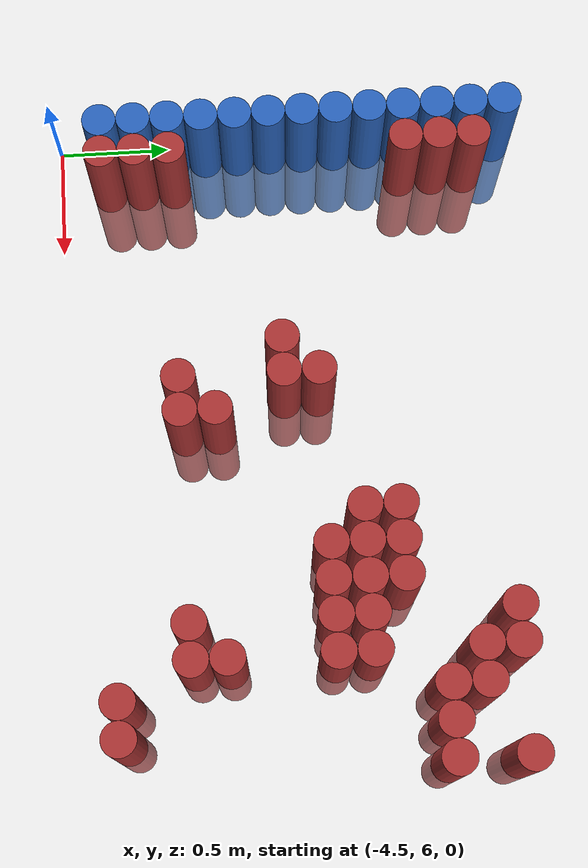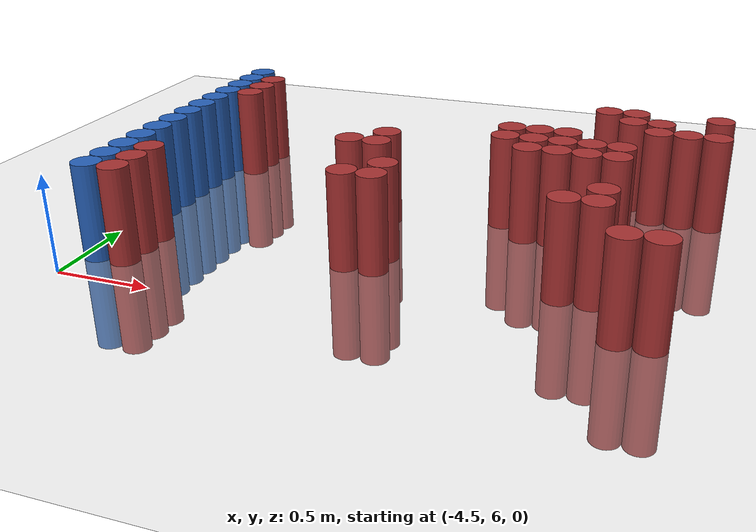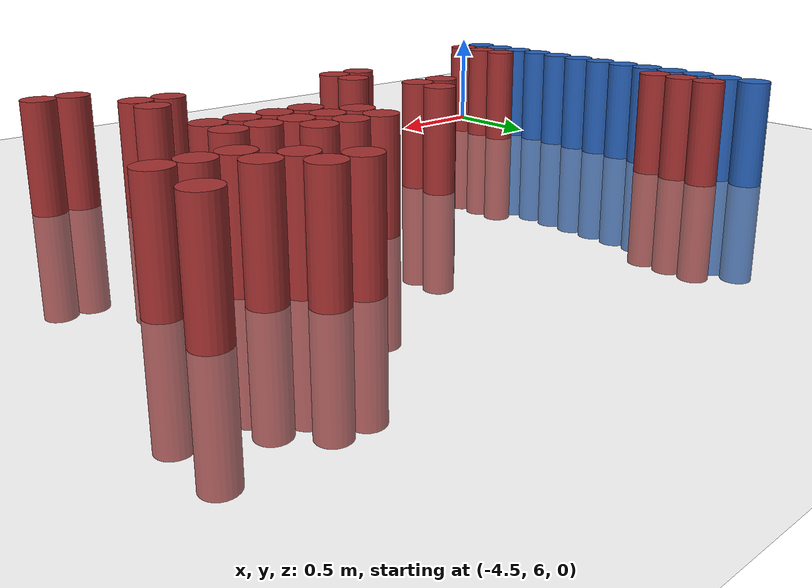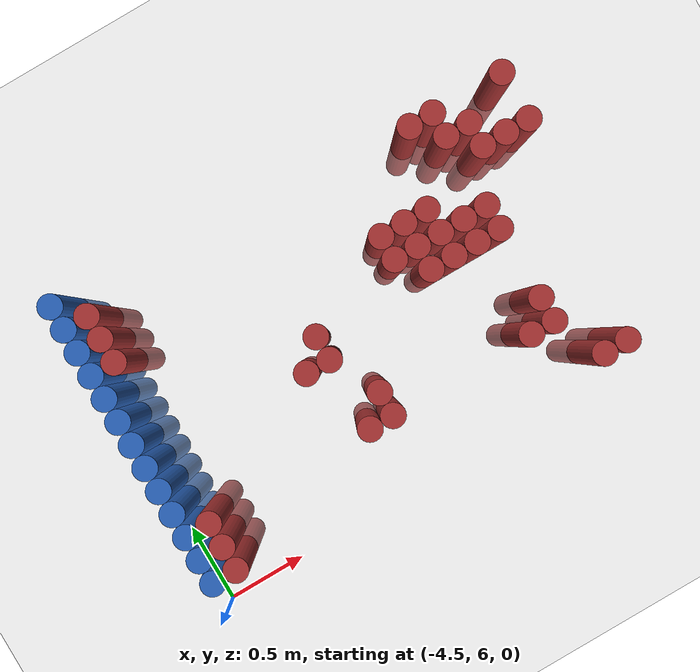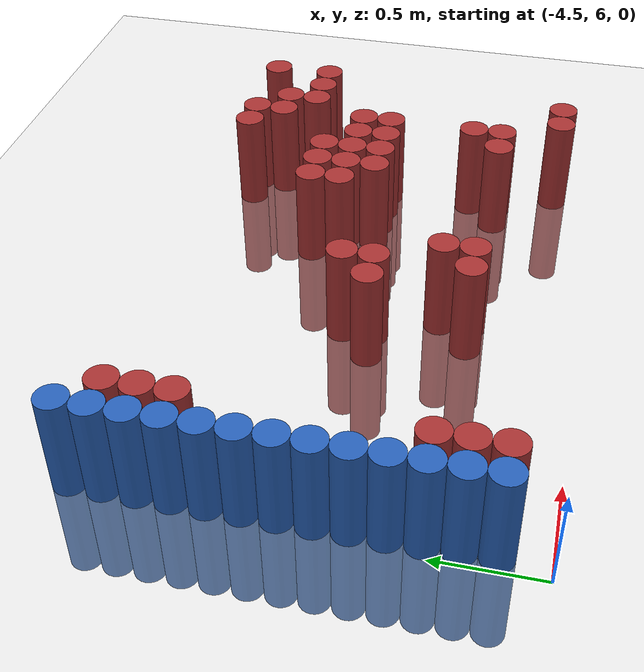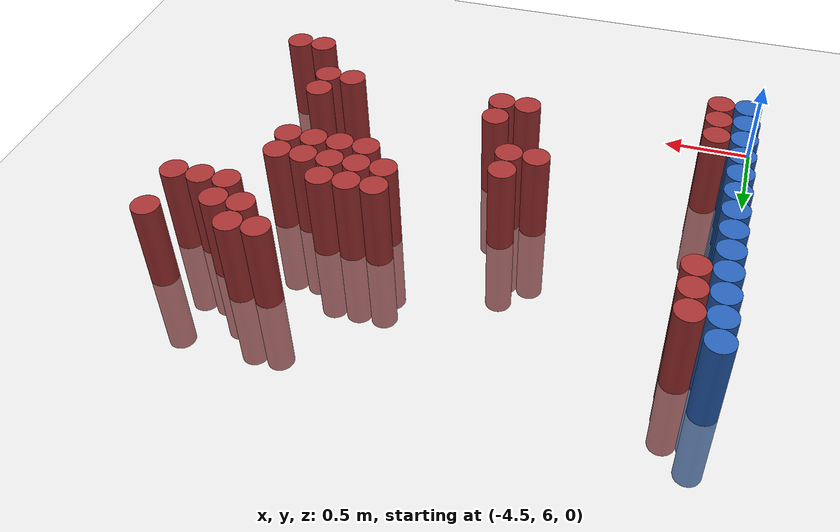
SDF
<sdf version="1.6">
 <world name="default">
  <model name="ground_plane">
   <static>1</static>
   <link name="link">
    <collision name="collision">
     <geometry><plane><normal>0 0 1</normal><size>100 100</size></plane></geometry>
     <surface><friction><ode><mu>100</mu><mu2>50</mu2></ode></friction></surface>
    </collision>
    <visual name="visual">
     <cast_shadows>0</cast_shadows>
     <geometry><plane><normal>0 0 1</normal><size>100 100</size></plane></geometry>
     <material>
      <script><uri>file://media/materials/scripts/gazebo.material</uri><name>Gazebo/Grey</name></script>
     </material>
    </visual>
   </link>
  </model>
  <model name="unit_cylinder_103">
   <static>1</static>
   <pose>-4.425000 6.225000 0.000000 0.000000 0.000000 0.000000</pose>
   <link name="link">
    <inertial>
     <mass>1</mass>
     <inertia><ixx>0.145833</ixx><ixy>0</ixy><ixz>0</ixz><iyy>0.145833</iyy><iyz>0</iyz><izz>0.125</izz></inertia>
    </inertial>
    <collision name="collision">
     <geometry><cylinder><radius>0.075000</radius><length>1</length></cylinder></geometry>
    </collision>
    <visual name="visual">
     <geometry><cylinder><radius>0.075000</radius><length>1</length></cylinder></geometry>
     <material>
      <ambient>0.152000 0.379000 0.720000 1</ambient>
      <diffuse>0.152000 0.379000 0.720000 1</diffuse>
     </material>
     <material>
      <script><name>Gazebo/Grey</name><uri>file://media/materials/scripts/gazebo.material</uri></script>
     </material>
    </visual>
   </link>
  </model>
  <model name="unit_cylinder_104">
   <static>1</static>
   <pose>-4.425000 6.375000 0.000000 0.000000 0.000000 0.000000</pose>
   <link name="link">
    <inertial>
     <mass>1</mass>
     <inertia><ixx>0.145833</ixx><ixy>0</ixy><ixz>0</ixz><iyy>0.145833</iyy><iyz>0</iyz><izz>0.125</izz></inertia>
    </inertial>
    <collision name="collision">
     <geometry><cylinder><radius>0.075000</radius><length>1</length></cylinder></geometry>
    </collision>
    <visual name="visual">
     <geometry><cylinder><radius>0.075000</radius><length>1</length></cylinder></geometry>
     <material>
      <ambient>0.152000 0.379000 0.720000 1</ambient>
      <diffuse>0.152000 0.379000 0.720000 1</diffuse>
     </material>
     <material>
      <script><name>Gazebo/Grey</name><uri>file://media/materials/scripts/gazebo.material</uri></script>
     </material>
    </visual>
   </link>
  </model>
  <model name="unit_cylinder_105">
   <static>1</static>
   <pose>-4.425000 6.525000 0.000000 0.000000 0.000000 0.000000</pose>
   <link name="link">
    <inertial>
     <mass>1</mass>
     <inertia><ixx>0.145833</ixx><ixy>0</ixy><ixz>0</ixz><iyy>0.145833</iyy><iyz>0</iyz><izz>0.125</izz></inertia>
    </inertial>
    <collision name="collision">
     <geometry><cylinder><radius>0.075000</radius><length>1</length></cylinder></geometry>
    </collision>
    <visual name="visual">
     <geometry><cylinder><radius>0.075000</radius><length>1</length></cylinder></geometry>
     <material>
      <ambient>0.152000 0.379000 0.720000 1</ambient>
      <diffuse>0.152000 0.379000 0.720000 1</diffuse>
     </material>
     <material>
      <script><name>Gazebo/Grey</name><uri>file://media/materials/scripts/gazebo.material</uri></script>
     </material>
    </visual>
   </link>
  </model>
  <model name="unit_cylinder_106">
   <static>1</static>
   <pose>-4.425000 6.675000 0.000000 0.000000 0.000000 0.000000</pose>
   <link name="link">
    <inertial>
     <mass>1</mass>
     <inertia><ixx>0.145833</ixx><ixy>0</ixy><ixz>0</ixz><iyy>0.145833</iyy><iyz>0</iyz><izz>0.125</izz></inertia>
    </inertial>
    <collision name="collision">
     <geometry><cylinder><radius>0.075000</radius><length>1</length></cylinder></geometry>
    </collision>
    <visual name="visual">
     <geometry><cylinder><radius>0.075000</radius><length>1</length></cylinder></geometry>
     <material>
      <ambient>0.152000 0.379000 0.720000 1</ambient>
      <diffuse>0.152000 0.379000 0.720000 1</diffuse>
     </material>
     <material>
      <script><name>Gazebo/Grey</name><uri>file://media/materials/scripts/gazebo.material</uri></script>
     </material>
    </visual>
   </link>
  </model>
  <model name="unit_cylinder_107">
   <static>1</static>
   <pose>-4.425000 6.825000 0.000000 0.000000 0.000000 0.000000</pose>
   <link name="link">
    <inertial>
     <mass>1</mass>
     <inertia><ixx>0.145833</ixx><ixy>0</ixy><ixz>0</ixz><iyy>0.145833</iyy><iyz>0</iyz><izz>0.125</izz></inertia>
    </inertial>
    <collision name="collision">
     <geometry><cylinder><radius>0.075000</radius><length>1</length></cylinder></geometry>
    </collision>
    <visual name="visual">
     <geometry><cylinder><radius>0.075000</radius><length>1</length></cylinder></geometry>
     <material>
      <ambient>0.152000 0.379000 0.720000 1</ambient>
      <diffuse>0.152000 0.379000 0.720000 1</diffuse>
     </material>
     <material>
      <script><name>Gazebo/Grey</name><uri>file://media/materials/scripts/gazebo.material</uri></script>
     </material>
    </visual>
   </link>
  </model>
  <model name="unit_cylinder_108">
   <static>1</static>
   <pose>-4.425000 6.975000 0.000000 0.000000 0.000000 0.000000</pose>
   <link name="link">
    <inertial>
     <mass>1</mass>
     <inertia><ixx>0.145833</ixx><ixy>0</ixy><ixz>0</ixz><iyy>0.145833</iyy><iyz>0</iyz><izz>0.125</izz></inertia>
    </inertial>
    <collision name="collision">
     <geometry><cylinder><radius>0.075000</radius><length>1</length></cylinder></geometry>
    </collision>
    <visual name="visual">
     <geometry><cylinder><radius>0.075000</radius><length>1</length></cylinder></geometry>
     <material>
      <ambient>0.152000 0.379000 0.720000 1</ambient>
      <diffuse>0.152000 0.379000 0.720000 1</diffuse>
     </material>
     <material>
      <script><name>Gazebo/Grey</name><uri>file://media/materials/scripts/gazebo.material</uri></script>
     </material>
    </visual>
   </link>
  </model>
  <model name="unit_cylinder_109">
   <static>1</static>
   <pose>-4.425000 7.125000 0.000000 0.000000 0.000000 0.000000</pose>
   <link name="link">
    <inertial>
     <mass>1</mass>
     <inertia><ixx>0.145833</ixx><ixy>0</ixy><ixz>0</ixz><iyy>0.145833</iyy><iyz>0</iyz><izz>0.125</izz></inertia>
    </inertial>
    <collision name="collision">
     <geometry><cylinder><radius>0.075000</radius><length>1</length></cylinder></geometry>
    </collision>
    <visual name="visual">
     <geometry><cylinder><radius>0.075000</radius><length>1</length></cylinder></geometry>
     <material>
      <ambient>0.152000 0.379000 0.720000 1</ambient>
      <diffuse>0.152000 0.379000 0.720000 1</diffuse>
     </material>
     <material>
      <script><name>Gazebo/Grey</name><uri>file://media/materials/scripts/gazebo.material</uri></script>
     </material>
    </visual>
   </link>
  </model>
  <model name="unit_cylinder_110">
   <static>1</static>
   <pose>-4.425000 7.275000 0.000000 0.000000 0.000000 0.000000</pose>
   <link name="link">
    <inertial>
     <mass>1</mass>
     <inertia><ixx>0.145833</ixx><ixy>0</ixy><ixz>0</ixz><iyy>0.145833</iyy><iyz>0</iyz><izz>0.125</izz></inertia>
    </inertial>
    <collision name="collision">
     <geometry><cylinder><radius>0.075000</radius><length>1</length></cylinder></geometry>
    </collision>
    <visual name="visual">
     <geometry><cylinder><radius>0.075000</radius><length>1</length></cylinder></geometry>
     <material>
      <ambient>0.152000 0.379000 0.720000 1</ambient>
      <diffuse>0.152000 0.379000 0.720000 1</diffuse>
     </material>
     <material>
      <script><name>Gazebo/Grey</name><uri>file://media/materials/scripts/gazebo.material</uri></script>
     </material>
    </visual>
   </link>
  </model>
  <model name="unit_cylinder_111">
   <static>1</static>
   <pose>-4.425000 7.425000 0.000000 0.000000 0.000000 0.000000</pose>
   <link name="link">
    <inertial>
     <mass>1</mass>
     <inertia><ixx>0.145833</ixx><ixy>0</ixy><ixz>0</ixz><iyy>0.145833</iyy><iyz>0</iyz><izz>0.125</izz></inertia>
    </inertial>
    <collision name="collision">
     <geometry><cylinder><radius>0.075000</radius><length>1</length></cylinder></geometry>
    </collision>
    <visual name="visual">
     <geometry><cylinder><radius>0.075000</radius><length>1</length></cylinder></geometry>
     <material>
      <ambient>0.152000 0.379000 0.720000 1</ambient>
      <diffuse>0.152000 0.379000 0.720000 1</diffuse>
     </material>
     <material>
      <script><name>Gazebo/Grey</name><uri>file://media/materials/scripts/gazebo.material</uri></script>
     </material>
    </visual>
   </link>
  </model>
  <model name="unit_cylinder_112">
   <static>1</static>
   <pose>-4.425000 7.575000 0.000000 0.000000 0.000000 0.000000</pose>
   <link name="link">
    <inertial>
     <mass>1</mass>
     <inertia><ixx>0.145833</ixx><ixy>0</ixy><ixz>0</ixz><iyy>0.145833</iyy><iyz>0</iyz><izz>0.125</izz></inertia>
    </inertial>
    <collision name="collision">
     <geometry><cylinder><radius>0.075000</radius><length>1</length></cylinder></geometry>
    </collision>
    <visual name="visual">
     <geometry><cylinder><radius>0.075000</radius><length>1</length></cylinder></geometry>
     <material>
      <ambient>0.152000 0.379000 0.720000 1</ambient>
      <diffuse>0.152000 0.379000 0.720000 1</diffuse>
     </material>
     <material>
      <script><name>Gazebo/Grey</name><uri>file://media/materials/scripts/gazebo.material</uri></script>
     </material>
    </visual>
   </link>
  </model>
  <model name="unit_cylinder_113">
   <static>1</static>
   <pose>-4.425000 7.725000 0.000000 0.000000 0.000000 0.000000</pose>
   <link name="link">
    <inertial>
     <mass>1</mass>
     <inertia><ixx>0.145833</ixx><ixy>0</ixy><ixz>0</ixz><iyy>0.145833</iyy><iyz>0</iyz><izz>0.125</izz></inertia>
    </inertial>
    <collision name="collision">
     <geometry><cylinder><radius>0.075000</radius><length>1</length></cylinder></geometry>
    </collision>
    <visual name="visual">
     <geometry><cylinder><radius>0.075000</radius><length>1</length></cylinder></geometry>
     <material>
      <ambient>0.152000 0.379000 0.720000 1</ambient>
      <diffuse>0.152000 0.379000 0.720000 1</diffuse>
     </material>
     <material>
      <script><name>Gazebo/Grey</name><uri>file://media/materials/scripts/gazebo.material</uri></script>
     </material>
    </visual>
   </link>
  </model>
  <model name="unit_cylinder_114">
   <static>1</static>
   <pose>-4.425000 7.875000 0.000000 0.000000 0.000000 0.000000</pose>
   <link name="link">
    <inertial>
     <mass>1</mass>
     <inertia><ixx>0.145833</ixx><ixy>0</ixy><ixz>0</ixz><iyy>0.145833</iyy><iyz>0</iyz><izz>0.125</izz></inertia>
    </inertial>
    <collision name="collision">
     <geometry><cylinder><radius>0.075000</radius><length>1</length></cylinder></geometry>
    </collision>
    <visual name="visual">
     <geometry><cylinder><radius>0.075000</radius><length>1</length></cylinder></geometry>
     <material>
      <ambient>0.152000 0.379000 0.720000 1</ambient>
      <diffuse>0.152000 0.379000 0.720000 1</diffuse>
     </material>
     <material>
      <script><name>Gazebo/Grey</name><uri>file://media/materials/scripts/gazebo.material</uri></script>
     </material>
    </visual>
   </link>
  </model>
  <model name="unit_cylinder_115">
   <static>1</static>
   <pose>-4.425000 8.025000 0.000000 0.000000 0.000000 0.000000</pose>
   <link name="link">
    <inertial>
     <mass>1</mass>
     <inertia><ixx>0.145833</ixx><ixy>0</ixy><ixz>0</ixz><iyy>0.145833</iyy><iyz>0</iyz><izz>0.125</izz></inertia>
    </inertial>
    <collision name="collision">
     <geometry><cylinder><radius>0.075000</radius><length>1</length></cylinder></geometry>
    </collision>
    <visual name="visual">
     <geometry><cylinder><radius>0.075000</radius><length>1</length></cylinder></geometry>
     <material>
      <ambient>0.152000 0.379000 0.720000 1</ambient>
      <diffuse>0.152000 0.379000 0.720000 1</diffuse>
     </material>
     <material>
      <script><name>Gazebo/Grey</name><uri>file://media/materials/scripts/gazebo.material</uri></script>
     </material>
    </visual>
   </link>
  </model>
  <model name="unit_cylinder_127">
   <static>1</static>
   <pose>-4.275000 6.225000 0.000000 0.000000 0.000000 0.000000</pose>
   <link name="link">
    <inertial>
     <mass>1</mass>
     <inertia><ixx>0.145833</ixx><ixy>0</ixy><ixz>0</ixz><iyy>0.145833</iyy><iyz>0</iyz><izz>0.125</izz></inertia>
    </inertial>
    <collision name="collision">
     <geometry><cylinder><radius>0.075000</radius><length>1</length></cylinder></geometry>
    </collision>
    <visual name="visual">
     <geometry><cylinder><radius>0.075000</radius><length>1</length></cylinder></geometry>
     <material>
      <ambient>0.648000 0.192000 0.192000 1</ambient>
      <diffuse>0.648000 0.192000 0.192000 1</diffuse>
     </material>
     <material>
      <script><name>Gazebo/Grey</name><uri>file://media/materials/scripts/gazebo.material</uri></script>
     </material>
    </visual>
   </link>
  </model>
  <model name="unit_cylinder_128">
   <static>1</static>
   <pose>-4.275000 6.375000 0.000000 0.000000 0.000000 0.000000</pose>
   <link name="link">
    <inertial>
     <mass>1</mass>
     <inertia><ixx>0.145833</ixx><ixy>0</ixy><ixz>0</ixz><iyy>0.145833</iyy><iyz>0</iyz><izz>0.125</izz></inertia>
    </inertial>
    <collision name="collision">
     <geometry><cylinder><radius>0.075000</radius><length>1</length></cylinder></geometry>
    </collision>
    <visual name="visual">
     <geometry><cylinder><radius>0.075000</radius><length>1</length></cylinder></geometry>
     <material>
      <ambient>0.648000 0.192000 0.192000 1</ambient>
      <diffuse>0.648000 0.192000 0.192000 1</diffuse>
     </material>
     <material>
      <script><name>Gazebo/Grey</name><uri>file://media/materials/scripts/gazebo.material</uri></script>
     </material>
    </visual>
   </link>
  </model>
  <model name="unit_cylinder_129">
   <static>1</static>
   <pose>-4.275000 6.525000 0.000000 0.000000 0.000000 0.000000</pose>
   <link name="link">
    <inertial>
     <mass>1</mass>
     <inertia><ixx>0.145833</ixx><ixy>0</ixy><ixz>0</ixz><iyy>0.145833</iyy><iyz>0</iyz><izz>0.125</izz></inertia>
    </inertial>
    <collision name="collision">
     <geometry><cylinder><radius>0.075000</radius><length>1</length></cylinder></geometry>
    </collision>
    <visual name="visual">
     <geometry><cylinder><radius>0.075000</radius><length>1</length></cylinder></geometry>
     <material>
      <ambient>0.648000 0.192000 0.192000 1</ambient>
      <diffuse>0.648000 0.192000 0.192000 1</diffuse>
     </material>
     <material>
      <script><name>Gazebo/Grey</name><uri>file://media/materials/scripts/gazebo.material</uri></script>
     </material>
    </visual>
   </link>
  </model>
  <model name="unit_cylinder_130">
   <static>1</static>
   <pose>-4.275000 7.575000 0.000000 0.000000 0.000000 0.000000</pose>
   <link name="link">
    <inertial>
     <mass>1</mass>
     <inertia><ixx>0.145833</ixx><ixy>0</ixy><ixz>0</ixz><iyy>0.145833</iyy><iyz>0</iyz><izz>0.125</izz></inertia>
    </inertial>
    <collision name="collision">
     <geometry><cylinder><radius>0.075000</radius><length>1</length></cylinder></geometry>
    </collision>
    <visual name="visual">
     <geometry><cylinder><radius>0.075000</radius><length>1</length></cylinder></geometry>
     <material>
      <ambient>0.648000 0.192000 0.192000 1</ambient>
      <diffuse>0.648000 0.192000 0.192000 1</diffuse>
     </material>
     <material>
      <script><name>Gazebo/Grey</name><uri>file://media/materials/scripts/gazebo.material</uri></script>
     </material>
    </visual>
   </link>
  </model>
  <model name="unit_cylinder_131">
   <static>1</static>
   <pose>-4.275000 7.725000 0.000000 0.000000 0.000000 0.000000</pose>
   <link name="link">
    <inertial>
     <mass>1</mass>
     <inertia><ixx>0.145833</ixx><ixy>0</ixy><ixz>0</ixz><iyy>0.145833</iyy><iyz>0</iyz><izz>0.125</izz></inertia>
    </inertial>
    <collision name="collision">
     <geometry><cylinder><radius>0.075000</radius><length>1</length></cylinder></geometry>
    </collision>
    <visual name="visual">
     <geometry><cylinder><radius>0.075000</radius><length>1</length></cylinder></geometry>
     <material>
      <ambient>0.648000 0.192000 0.192000 1</ambient>
      <diffuse>0.648000 0.192000 0.192000 1</diffuse>
     </material>
     <material>
      <script><name>Gazebo/Grey</name><uri>file://media/materials/scripts/gazebo.material</uri></script>
     </material>
    </visual>
   </link>
  </model>
  <model name="unit_cylinder_132">
   <static>1</static>
   <pose>-4.275000 7.875000 0.000000 0.000000 0.000000 0.000000</pose>
   <link name="link">
    <inertial>
     <mass>1</mass>
     <inertia><ixx>0.145833</ixx><ixy>0</ixy><ixz>0</ixz><iyy>0.145833</iyy><iyz>0</iyz><izz>0.125</izz></inertia>
    </inertial>
    <collision name="collision">
     <geometry><cylinder><radius>0.075000</radius><length>1</length></cylinder></geometry>
    </collision>
    <visual name="visual">
     <geometry><cylinder><radius>0.075000</radius><length>1</length></cylinder></geometry>
     <material>
      <ambient>0.648000 0.192000 0.192000 1</ambient>
      <diffuse>0.648000 0.192000 0.192000 1</diffuse>
     </material>
     <material>
      <script><name>Gazebo/Grey</name><uri>file://media/materials/scripts/gazebo.material</uri></script>
     </material>
    </visual>
   </link>
  </model>
  <model name="unit_cylinder_147">
   <static>1</static>
   <pose>-3.375000 6.975000 0.000000 0.000000 0.000000 0.000000</pose>
   <link name="link">
    <inertial>
     <mass>1</mass>
     <inertia><ixx>0.145833</ixx><ixy>0</ixy><ixz>0</ixz><iyy>0.145833</iyy><iyz>0</iyz><izz>0.125</izz></inertia>
    </inertial>
    <collision name="collision">
     <geometry><cylinder><radius>0.075000</radius><length>1</length></cylinder></geometry>
    </collision>
    <visual name="visual">
     <geometry><cylinder><radius>0.075000</radius><length>1</length></cylinder></geometry>
     <material>
      <ambient>0.648000 0.192000 0.192000 1</ambient>
      <diffuse>0.648000 0.192000 0.192000 1</diffuse>
     </material>
     <material>
      <script><name>Gazebo/Grey</name><uri>file://media/materials/scripts/gazebo.material</uri></script>
     </material>
    </visual>
   </link>
  </model>
  <model name="unit_cylinder_149">
   <static>1</static>
   <pose>-3.225000 6.525000 0.000000 0.000000 0.000000 0.000000</pose>
   <link name="link">
    <inertial>
     <mass>1</mass>
     <inertia><ixx>0.145833</ixx><ixy>0</ixy><ixz>0</ixz><iyy>0.145833</iyy><iyz>0</iyz><izz>0.125</izz></inertia>
    </inertial>
    <collision name="collision">
     <geometry><cylinder><radius>0.075000</radius><length>1</length></cylinder></geometry>
    </collision>
    <visual name="visual">
     <geometry><cylinder><radius>0.075000</radius><length>1</length></cylinder></geometry>
     <material>
      <ambient>0.648000 0.192000 0.192000 1</ambient>
      <diffuse>0.648000 0.192000 0.192000 1</diffuse>
     </material>
     <material>
      <script><name>Gazebo/Grey</name><uri>file://media/materials/scripts/gazebo.material</uri></script>
     </material>
    </visual>
   </link>
  </model>
  <model name="unit_cylinder_150">
   <static>1</static>
   <pose>-3.225000 6.975000 0.000000 0.000000 0.000000 0.000000</pose>
   <link name="link">
    <inertial>
     <mass>1</mass>
     <inertia><ixx>0.145833</ixx><ixy>0</ixy><ixz>0</ixz><iyy>0.145833</iyy><iyz>0</iyz><izz>0.125</izz></inertia>
    </inertial>
    <collision name="collision">
     <geometry><cylinder><radius>0.075000</radius><length>1</length></cylinder></geometry>
    </collision>
    <visual name="visual">
     <geometry><cylinder><radius>0.075000</radius><length>1</length></cylinder></geometry>
     <material>
      <ambient>0.648000 0.192000 0.192000 1</ambient>
      <diffuse>0.648000 0.192000 0.192000 1</diffuse>
     </material>
     <material>
      <script><name>Gazebo/Grey</name><uri>file://media/materials/scripts/gazebo.material</uri></script>
     </material>
    </visual>
   </link>
  </model>
  <model name="unit_cylinder_151">
   <static>1</static>
   <pose>-3.225000 7.125000 0.000000 0.000000 0.000000 0.000000</pose>
   <link name="link">
    <inertial>
     <mass>1</mass>
     <inertia><ixx>0.145833</ixx><ixy>0</ixy><ixz>0</ixz><iyy>0.145833</iyy><iyz>0</iyz><izz>0.125</izz></inertia>
    </inertial>
    <collision name="collision">
     <geometry><cylinder><radius>0.075000</radius><length>1</length></cylinder></geometry>
    </collision>
    <visual name="visual">
     <geometry><cylinder><radius>0.075000</radius><length>1</length></cylinder></geometry>
     <material>
      <ambient>0.648000 0.192000 0.192000 1</ambient>
      <diffuse>0.648000 0.192000 0.192000 1</diffuse>
     </material>
     <material>
      <script><name>Gazebo/Grey</name><uri>file://media/materials/scripts/gazebo.material</uri></script>
     </material>
    </visual>
   </link>
  </model>
  <model name="unit_cylinder_153">
   <static>1</static>
   <pose>-3.075000 6.525000 0.000000 0.000000 0.000000 0.000000</pose>
   <link name="link">
    <inertial>
     <mass>1</mass>
     <inertia><ixx>0.145833</ixx><ixy>0</ixy><ixz>0</ixz><iyy>0.145833</iyy><iyz>0</iyz><izz>0.125</izz></inertia>
    </inertial>
    <collision name="collision">
     <geometry><cylinder><radius>0.075000</radius><length>1</length></cylinder></geometry>
    </collision>
    <visual name="visual">
     <geometry><cylinder><radius>0.075000</radius><length>1</length></cylinder></geometry>
     <material>
      <ambient>0.648000 0.192000 0.192000 1</ambient>
      <diffuse>0.648000 0.192000 0.192000 1</diffuse>
     </material>
     <material>
      <script><name>Gazebo/Grey</name><uri>file://media/materials/scripts/gazebo.material</uri></script>
     </material>
    </visual>
   </link>
  </model>
  <model name="unit_cylinder_154">
   <static>1</static>
   <pose>-3.075000 6.675000 0.000000 0.000000 0.000000 0.000000</pose>
   <link name="link">
    <inertial>
     <mass>1</mass>
     <inertia><ixx>0.145833</ixx><ixy>0</ixy><ixz>0</ixz><iyy>0.145833</iyy><iyz>0</iyz><izz>0.125</izz></inertia>
    </inertial>
    <collision name="collision">
     <geometry><cylinder><radius>0.075000</radius><length>1</length></cylinder></geometry>
    </collision>
    <visual name="visual">
     <geometry><cylinder><radius>0.075000</radius><length>1</length></cylinder></geometry>
     <material>
      <ambient>0.648000 0.192000 0.192000 1</ambient>
      <diffuse>0.648000 0.192000 0.192000 1</diffuse>
     </material>
     <material>
      <script><name>Gazebo/Grey</name><uri>file://media/materials/scripts/gazebo.material</uri></script>
     </material>
    </visual>
   </link>
  </model>
  <model name="unit_cylinder_162">
   <static>1</static>
   <pose>-2.625000 7.275000 0.000000 0.000000 0.000000 0.000000</pose>
   <link name="link">
    <inertial>
     <mass>1</mass>
     <inertia><ixx>0.145833</ixx><ixy>0</ixy><ixz>0</ixz><iyy>0.145833</iyy><iyz>0</iyz><izz>0.125</izz></inertia>
    </inertial>
    <collision name="collision">
     <geometry><cylinder><radius>0.075000</radius><length>1</length></cylinder></geometry>
    </collision>
    <visual name="visual">
     <geometry><cylinder><radius>0.075000</radius><length>1</length></cylinder></geometry>
     <material>
      <ambient>0.648000 0.192000 0.192000 1</ambient>
      <diffuse>0.648000 0.192000 0.192000 1</diffuse>
     </material>
     <material>
      <script><name>Gazebo/Grey</name><uri>file://media/materials/scripts/gazebo.material</uri></script>
     </material>
    </visual>
   </link>
  </model>
  <model name="unit_cylinder_163">
   <static>1</static>
   <pose>-2.625000 7.425000 0.000000 0.000000 0.000000 0.000000</pose>
   <link name="link">
    <inertial>
     <mass>1</mass>
     <inertia><ixx>0.145833</ixx><ixy>0</ixy><ixz>0</ixz><iyy>0.145833</iyy><iyz>0</iyz><izz>0.125</izz></inertia>
    </inertial>
    <collision name="collision">
     <geometry><cylinder><radius>0.075000</radius><length>1</length></cylinder></geometry>
    </collision>
    <visual name="visual">
     <geometry><cylinder><radius>0.075000</radius><length>1</length></cylinder></geometry>
     <material>
      <ambient>0.648000 0.192000 0.192000 1</ambient>
      <diffuse>0.648000 0.192000 0.192000 1</diffuse>
     </material>
     <material>
      <script><name>Gazebo/Grey</name><uri>file://media/materials/scripts/gazebo.material</uri></script>
     </material>
    </visual>
   </link>
  </model>
  <model name="unit_cylinder_170">
   <static>1</static>
   <pose>-2.475000 7.125000 0.000000 0.000000 0.000000 0.000000</pose>
   <link name="link">
    <inertial>
     <mass>1</mass>
     <inertia><ixx>0.145833</ixx><ixy>0</ixy><ixz>0</ixz><iyy>0.145833</iyy><iyz>0</iyz><izz>0.125</izz></inertia>
    </inertial>
    <collision name="collision">
     <geometry><cylinder><radius>0.075000</radius><length>1</length></cylinder></geometry>
    </collision>
    <visual name="visual">
     <geometry><cylinder><radius>0.075000</radius><length>1</length></cylinder></geometry>
     <material>
      <ambient>0.648000 0.192000 0.192000 1</ambient>
      <diffuse>0.648000 0.192000 0.192000 1</diffuse>
     </material>
     <material>
      <script><name>Gazebo/Grey</name><uri>file://media/materials/scripts/gazebo.material</uri></script>
     </material>
    </visual>
   </link>
  </model>
  <model name="unit_cylinder_171">
   <static>1</static>
   <pose>-2.475000 7.275000 0.000000 0.000000 0.000000 0.000000</pose>
   <link name="link">
    <inertial>
     <mass>1</mass>
     <inertia><ixx>0.145833</ixx><ixy>0</ixy><ixz>0</ixz><iyy>0.145833</iyy><iyz>0</iyz><izz>0.125</izz></inertia>
    </inertial>
    <collision name="collision">
     <geometry><cylinder><radius>0.075000</radius><length>1</length></cylinder></geometry>
    </collision>
    <visual name="visual">
     <geometry><cylinder><radius>0.075000</radius><length>1</length></cylinder></geometry>
     <material>
      <ambient>0.648000 0.192000 0.192000 1</ambient>
      <diffuse>0.648000 0.192000 0.192000 1</diffuse>
     </material>
     <material>
      <script><name>Gazebo/Grey</name><uri>file://media/materials/scripts/gazebo.material</uri></script>
     </material>
    </visual>
   </link>
  </model>
  <model name="unit_cylinder_172">
   <static>1</static>
   <pose>-2.475000 7.425000 0.000000 0.000000 0.000000 0.000000</pose>
   <link name="link">
    <inertial>
     <mass>1</mass>
     <inertia><ixx>0.145833</ixx><ixy>0</ixy><ixz>0</ixz><iyy>0.145833</iyy><iyz>0</iyz><izz>0.125</izz></inertia>
    </inertial>
    <collision name="collision">
     <geometry><cylinder><radius>0.075000</radius><length>1</length></cylinder></geometry>
    </collision>
    <visual name="visual">
     <geometry><cylinder><radius>0.075000</radius><length>1</length></cylinder></geometry>
     <material>
      <ambient>0.648000 0.192000 0.192000 1</ambient>
      <diffuse>0.648000 0.192000 0.192000 1</diffuse>
     </material>
     <material>
      <script><name>Gazebo/Grey</name><uri>file://media/materials/scripts/gazebo.material</uri></script>
     </material>
    </visual>
   </link>
  </model>
  <model name="unit_cylinder_181">
   <static>1</static>
   <pose>-2.325000 7.125000 0.000000 0.000000 0.000000 0.000000</pose>
   <link name="link">
    <inertial>
     <mass>1</mass>
     <inertia><ixx>0.145833</ixx><ixy>0</ixy><ixz>0</ixz><iyy>0.145833</iyy><iyz>0</iyz><izz>0.125</izz></inertia>
    </inertial>
    <collision name="collision">
     <geometry><cylinder><radius>0.075000</radius><length>1</length></cylinder></geometry>
    </collision>
    <visual name="visual">
     <geometry><cylinder><radius>0.075000</radius><length>1</length></cylinder></geometry>
     <material>
      <ambient>0.648000 0.192000 0.192000 1</ambient>
      <diffuse>0.648000 0.192000 0.192000 1</diffuse>
     </material>
     <material>
      <script><name>Gazebo/Grey</name><uri>file://media/materials/scripts/gazebo.material</uri></script>
     </material>
    </visual>
   </link>
  </model>
  <model name="unit_cylinder_182">
   <static>1</static>
   <pose>-2.325000 7.275000 0.000000 0.000000 0.000000 0.000000</pose>
   <link name="link">
    <inertial>
     <mass>1</mass>
     <inertia><ixx>0.145833</ixx><ixy>0</ixy><ixz>0</ixz><iyy>0.145833</iyy><iyz>0</iyz><izz>0.125</izz></inertia>
    </inertial>
    <collision name="collision">
     <geometry><cylinder><radius>0.075000</radius><length>1</length></cylinder></geometry>
    </collision>
    <visual name="visual">
     <geometry><cylinder><radius>0.075000</radius><length>1</length></cylinder></geometry>
     <material>
      <ambient>0.648000 0.192000 0.192000 1</ambient>
      <diffuse>0.648000 0.192000 0.192000 1</diffuse>
     </material>
     <material>
      <script><name>Gazebo/Grey</name><uri>file://media/materials/scripts/gazebo.material</uri></script>
     </material>
    </visual>
   </link>
  </model>
  <model name="unit_cylinder_183">
   <static>1</static>
   <pose>-2.325000 7.425000 0.000000 0.000000 0.000000 0.000000</pose>
   <link name="link">
    <inertial>
     <mass>1</mass>
     <inertia><ixx>0.145833</ixx><ixy>0</ixy><ixz>0</ixz><iyy>0.145833</iyy><iyz>0</iyz><izz>0.125</izz></inertia>
    </inertial>
    <collision name="collision">
     <geometry><cylinder><radius>0.075000</radius><length>1</length></cylinder></geometry>
    </collision>
    <visual name="visual">
     <geometry><cylinder><radius>0.075000</radius><length>1</length></cylinder></geometry>
     <material>
      <ambient>0.648000 0.192000 0.192000 1</ambient>
      <diffuse>0.648000 0.192000 0.192000 1</diffuse>
     </material>
     <material>
      <script><name>Gazebo/Grey</name><uri>file://media/materials/scripts/gazebo.material</uri></script>
     </material>
    </visual>
   </link>
  </model>
  <model name="unit_cylinder_188">
   <static>1</static>
   <pose>-2.175000 6.525000 0.000000 0.000000 0.000000 0.000000</pose>
   <link name="link">
    <inertial>
     <mass>1</mass>
     <inertia><ixx>0.145833</ixx><ixy>0</ixy><ixz>0</ixz><iyy>0.145833</iyy><iyz>0</iyz><izz>0.125</izz></inertia>
    </inertial>
    <collision name="collision">
     <geometry><cylinder><radius>0.075000</radius><length>1</length></cylinder></geometry>
    </collision>
    <visual name="visual">
     <geometry><cylinder><radius>0.075000</radius><length>1</length></cylinder></geometry>
     <material>
      <ambient>0.648000 0.192000 0.192000 1</ambient>
      <diffuse>0.648000 0.192000 0.192000 1</diffuse>
     </material>
     <material>
      <script><name>Gazebo/Grey</name><uri>file://media/materials/scripts/gazebo.material</uri></script>
     </material>
    </visual>
   </link>
  </model>
  <model name="unit_cylinder_189">
   <static>1</static>
   <pose>-2.175000 7.125000 0.000000 0.000000 0.000000 0.000000</pose>
   <link name="link">
    <inertial>
     <mass>1</mass>
     <inertia><ixx>0.145833</ixx><ixy>0</ixy><ixz>0</ixz><iyy>0.145833</iyy><iyz>0</iyz><izz>0.125</izz></inertia>
    </inertial>
    <collision name="collision">
     <geometry><cylinder><radius>0.075000</radius><length>1</length></cylinder></geometry>
    </collision>
    <visual name="visual">
     <geometry><cylinder><radius>0.075000</radius><length>1</length></cylinder></geometry>
     <material>
      <ambient>0.648000 0.192000 0.192000 1</ambient>
      <diffuse>0.648000 0.192000 0.192000 1</diffuse>
     </material>
     <material>
      <script><name>Gazebo/Grey</name><uri>file://media/materials/scripts/gazebo.material</uri></script>
     </material>
    </visual>
   </link>
  </model>
  <model name="unit_cylinder_190">
   <static>1</static>
   <pose>-2.175000 7.275000 0.000000 0.000000 0.000000 0.000000</pose>
   <link name="link">
    <inertial>
     <mass>1</mass>
     <inertia><ixx>0.145833</ixx><ixy>0</ixy><ixz>0</ixz><iyy>0.145833</iyy><iyz>0</iyz><izz>0.125</izz></inertia>
    </inertial>
    <collision name="collision">
     <geometry><cylinder><radius>0.075000</radius><length>1</length></cylinder></geometry>
    </collision>
    <visual name="visual">
     <geometry><cylinder><radius>0.075000</radius><length>1</length></cylinder></geometry>
     <material>
      <ambient>0.648000 0.192000 0.192000 1</ambient>
      <diffuse>0.648000 0.192000 0.192000 1</diffuse>
     </material>
     <material>
      <script><name>Gazebo/Grey</name><uri>file://media/materials/scripts/gazebo.material</uri></script>
     </material>
    </visual>
   </link>
  </model>
  <model name="unit_cylinder_191">
   <static>1</static>
   <pose>-2.175000 7.875000 0.000000 0.000000 0.000000 0.000000</pose>
   <link name="link">
    <inertial>
     <mass>1</mass>
     <inertia><ixx>0.145833</ixx><ixy>0</ixy><ixz>0</ixz><iyy>0.145833</iyy><iyz>0</iyz><izz>0.125</izz></inertia>
    </inertial>
    <collision name="collision">
     <geometry><cylinder><radius>0.075000</radius><length>1</length></cylinder></geometry>
    </collision>
    <visual name="visual">
     <geometry><cylinder><radius>0.075000</radius><length>1</length></cylinder></geometry>
     <material>
      <ambient>0.648000 0.192000 0.192000 1</ambient>
      <diffuse>0.648000 0.192000 0.192000 1</diffuse>
     </material>
     <material>
      <script><name>Gazebo/Grey</name><uri>file://media/materials/scripts/gazebo.material</uri></script>
     </material>
    </visual>
   </link>
  </model>
  <model name="unit_cylinder_196">
   <static>1</static>
   <pose>-2.025000 6.525000 0.000000 0.000000 0.000000 0.000000</pose>
   <link name="link">
    <inertial>
     <mass>1</mass>
     <inertia><ixx>0.145833</ixx><ixy>0</ixy><ixz>0</ixz><iyy>0.145833</iyy><iyz>0</iyz><izz>0.125</izz></inertia>
    </inertial>
    <collision name="collision">
     <geometry><cylinder><radius>0.075000</radius><length>1</length></cylinder></geometry>
    </collision>
    <visual name="visual">
     <geometry><cylinder><radius>0.075000</radius><length>1</length></cylinder></geometry>
     <material>
      <ambient>0.648000 0.192000 0.192000 1</ambient>
      <diffuse>0.648000 0.192000 0.192000 1</diffuse>
     </material>
     <material>
      <script><name>Gazebo/Grey</name><uri>file://media/materials/scripts/gazebo.material</uri></script>
     </material>
    </visual>
   </link>
  </model>
  <model name="unit_cylinder_197">
   <static>1</static>
   <pose>-2.025000 6.675000 0.000000 0.000000 0.000000 0.000000</pose>
   <link name="link">
    <inertial>
     <mass>1</mass>
     <inertia><ixx>0.145833</ixx><ixy>0</ixy><ixz>0</ixz><iyy>0.145833</iyy><iyz>0</iyz><izz>0.125</izz></inertia>
    </inertial>
    <collision name="collision">
     <geometry><cylinder><radius>0.075000</radius><length>1</length></cylinder></geometry>
    </collision>
    <visual name="visual">
     <geometry><cylinder><radius>0.075000</radius><length>1</length></cylinder></geometry>
     <material>
      <ambient>0.648000 0.192000 0.192000 1</ambient>
      <diffuse>0.648000 0.192000 0.192000 1</diffuse>
     </material>
     <material>
      <script><name>Gazebo/Grey</name><uri>file://media/materials/scripts/gazebo.material</uri></script>
     </material>
    </visual>
   </link>
  </model>
  <model name="unit_cylinder_198">
   <static>1</static>
   <pose>-2.025000 7.125000 0.000000 0.000000 0.000000 0.000000</pose>
   <link name="link">
    <inertial>
     <mass>1</mass>
     <inertia><ixx>0.145833</ixx><ixy>0</ixy><ixz>0</ixz><iyy>0.145833</iyy><iyz>0</iyz><izz>0.125</izz></inertia>
    </inertial>
    <collision name="collision">
     <geometry><cylinder><radius>0.075000</radius><length>1</length></cylinder></geometry>
    </collision>
    <visual name="visual">
     <geometry><cylinder><radius>0.075000</radius><length>1</length></cylinder></geometry>
     <material>
      <ambient>0.648000 0.192000 0.192000 1</ambient>
      <diffuse>0.648000 0.192000 0.192000 1</diffuse>
     </material>
     <material>
      <script><name>Gazebo/Grey</name><uri>file://media/materials/scripts/gazebo.material</uri></script>
     </material>
    </visual>
   </link>
  </model>
  <model name="unit_cylinder_199">
   <static>1</static>
   <pose>-2.025000 7.275000 0.000000 0.000000 0.000000 0.000000</pose>
   <link name="link">
    <inertial>
     <mass>1</mass>
     <inertia><ixx>0.145833</ixx><ixy>0</ixy><ixz>0</ixz><iyy>0.145833</iyy><iyz>0</iyz><izz>0.125</izz></inertia>
    </inertial>
    <collision name="collision">
     <geometry><cylinder><radius>0.075000</radius><length>1</length></cylinder></geometry>
    </collision>
    <visual name="visual">
     <geometry><cylinder><radius>0.075000</radius><length>1</length></cylinder></geometry>
     <material>
      <ambient>0.648000 0.192000 0.192000 1</ambient>
      <diffuse>0.648000 0.192000 0.192000 1</diffuse>
     </material>
     <material>
      <script><name>Gazebo/Grey</name><uri>file://media/materials/scripts/gazebo.material</uri></script>
     </material>
    </visual>
   </link>
  </model>
  <model name="unit_cylinder_200">
   <static>1</static>
   <pose>-2.025000 7.725000 0.000000 0.000000 0.000000 0.000000</pose>
   <link name="link">
    <inertial>
     <mass>1</mass>
     <inertia><ixx>0.145833</ixx><ixy>0</ixy><ixz>0</ixz><iyy>0.145833</iyy><iyz>0</iyz><izz>0.125</izz></inertia>
    </inertial>
    <collision name="collision">
     <geometry><cylinder><radius>0.075000</radius><length>1</length></cylinder></geometry>
    </collision>
    <visual name="visual">
     <geometry><cylinder><radius>0.075000</radius><length>1</length></cylinder></geometry>
     <material>
      <ambient>0.648000 0.192000 0.192000 1</ambient>
      <diffuse>0.648000 0.192000 0.192000 1</diffuse>
     </material>
     <material>
      <script><name>Gazebo/Grey</name><uri>file://media/materials/scripts/gazebo.material</uri></script>
     </material>
    </visual>
   </link>
  </model>
  <model name="unit_cylinder_201">
   <static>1</static>
   <pose>-2.025000 7.875000 0.000000 0.000000 0.000000 0.000000</pose>
   <link name="link">
    <inertial>
     <mass>1</mass>
     <inertia><ixx>0.145833</ixx><ixy>0</ixy><ixz>0</ixz><iyy>0.145833</iyy><iyz>0</iyz><izz>0.125</izz></inertia>
    </inertial>
    <collision name="collision">
     <geometry><cylinder><radius>0.075000</radius><length>1</length></cylinder></geometry>
    </collision>
    <visual name="visual">
     <geometry><cylinder><radius>0.075000</radius><length>1</length></cylinder></geometry>
     <material>
      <ambient>0.648000 0.192000 0.192000 1</ambient>
      <diffuse>0.648000 0.192000 0.192000 1</diffuse>
     </material>
     <material>
      <script><name>Gazebo/Grey</name><uri>file://media/materials/scripts/gazebo.material</uri></script>
     </material>
    </visual>
   </link>
  </model>
  <model name="unit_cylinder_207">
   <static>1</static>
   <pose>-1.875000 6.225000 0.000000 0.000000 0.000000 0.000000</pose>
   <link name="link">
    <inertial>
     <mass>1</mass>
     <inertia><ixx>0.145833</ixx><ixy>0</ixy><ixz>0</ixz><iyy>0.145833</iyy><iyz>0</iyz><izz>0.125</izz></inertia>
    </inertial>
    <collision name="collision">
     <geometry><cylinder><radius>0.075000</radius><length>1</length></cylinder></geometry>
    </collision>
    <visual name="visual">
     <geometry><cylinder><radius>0.075000</radius><length>1</length></cylinder></geometry>
     <material>
      <ambient>0.648000 0.192000 0.192000 1</ambient>
      <diffuse>0.648000 0.192000 0.192000 1</diffuse>
     </material>
     <material>
      <script><name>Gazebo/Grey</name><uri>file://media/materials/scripts/gazebo.material</uri></script>
     </material>
    </visual>
   </link>
  </model>
  <model name="unit_cylinder_208">
   <static>1</static>
   <pose>-1.875000 7.575000 0.000000 0.000000 0.000000 0.000000</pose>
   <link name="link">
    <inertial>
     <mass>1</mass>
     <inertia><ixx>0.145833</ixx><ixy>0</ixy><ixz>0</ixz><iyy>0.145833</iyy><iyz>0</iyz><izz>0.125</izz></inertia>
    </inertial>
    <collision name="collision">
     <geometry><cylinder><radius>0.075000</radius><length>1</length></cylinder></geometry>
    </collision>
    <visual name="visual">
     <geometry><cylinder><radius>0.075000</radius><length>1</length></cylinder></geometry>
     <material>
      <ambient>0.648000 0.192000 0.192000 1</ambient>
      <diffuse>0.648000 0.192000 0.192000 1</diffuse>
     </material>
     <material>
      <script><name>Gazebo/Grey</name><uri>file://media/materials/scripts/gazebo.material</uri></script>
     </material>
    </visual>
   </link>
  </model>
  <model name="unit_cylinder_209">
   <static>1</static>
   <pose>-1.875000 7.725000 0.000000 0.000000 0.000000 0.000000</pose>
   <link name="link">
    <inertial>
     <mass>1</mass>
     <inertia><ixx>0.145833</ixx><ixy>0</ixy><ixz>0</ixz><iyy>0.145833</iyy><iyz>0</iyz><izz>0.125</izz></inertia>
    </inertial>
    <collision name="collision">
     <geometry><cylinder><radius>0.075000</radius><length>1</length></cylinder></geometry>
    </collision>
    <visual name="visual">
     <geometry><cylinder><radius>0.075000</radius><length>1</length></cylinder></geometry>
     <material>
      <ambient>0.648000 0.192000 0.192000 1</ambient>
      <diffuse>0.648000 0.192000 0.192000 1</diffuse>
     </material>
     <material>
      <script><name>Gazebo/Grey</name><uri>file://media/materials/scripts/gazebo.material</uri></script>
     </material>
    </visual>
   </link>
  </model>
  <model name="unit_cylinder_215">
   <static>1</static>
   <pose>-1.725000 6.225000 0.000000 0.000000 0.000000 0.000000</pose>
   <link name="link">
    <inertial>
     <mass>1</mass>
     <inertia><ixx>0.145833</ixx><ixy>0</ixy><ixz>0</ixz><iyy>0.145833</iyy><iyz>0</iyz><izz>0.125</izz></inertia>
    </inertial>
    <collision name="collision">
     <geometry><cylinder><radius>0.075000</radius><length>1</length></cylinder></geometry>
    </collision>
    <visual name="visual">
     <geometry><cylinder><radius>0.075000</radius><length>1</length></cylinder></geometry>
     <material>
      <ambient>0.648000 0.192000 0.192000 1</ambient>
      <diffuse>0.648000 0.192000 0.192000 1</diffuse>
     </material>
     <material>
      <script><name>Gazebo/Grey</name><uri>file://media/materials/scripts/gazebo.material</uri></script>
     </material>
    </visual>
   </link>
  </model>
  <model name="unit_cylinder_216">
   <static>1</static>
   <pose>-1.725000 7.575000 0.000000 0.000000 0.000000 0.000000</pose>
   <link name="link">
    <inertial>
     <mass>1</mass>
     <inertia><ixx>0.145833</ixx><ixy>0</ixy><ixz>0</ixz><iyy>0.145833</iyy><iyz>0</iyz><izz>0.125</izz></inertia>
    </inertial>
    <collision name="collision">
     <geometry><cylinder><radius>0.075000</radius><length>1</length></cylinder></geometry>
    </collision>
    <visual name="visual">
     <geometry><cylinder><radius>0.075000</radius><length>1</length></cylinder></geometry>
     <material>
      <ambient>0.648000 0.192000 0.192000 1</ambient>
      <diffuse>0.648000 0.192000 0.192000 1</diffuse>
     </material>
     <material>
      <script><name>Gazebo/Grey</name><uri>file://media/materials/scripts/gazebo.material</uri></script>
     </material>
    </visual>
   </link>
  </model>
  <model name="unit_cylinder_225">
   <static>1</static>
   <pose>-1.575000 7.575000 0.000000 0.000000 0.000000 0.000000</pose>
   <link name="link">
    <inertial>
     <mass>1</mass>
     <inertia><ixx>0.145833</ixx><ixy>0</ixy><ixz>0</ixz><iyy>0.145833</iyy><iyz>0</iyz><izz>0.125</izz></inertia>
    </inertial>
    <collision name="collision">
     <geometry><cylinder><radius>0.075000</radius><length>1</length></cylinder></geometry>
    </collision>
    <visual name="visual">
     <geometry><cylinder><radius>0.075000</radius><length>1</length></cylinder></geometry>
     <material>
      <ambient>0.648000 0.192000 0.192000 1</ambient>
      <diffuse>0.648000 0.192000 0.192000 1</diffuse>
     </material>
     <material>
      <script><name>Gazebo/Grey</name><uri>file://media/materials/scripts/gazebo.material</uri></script>
     </material>
    </visual>
   </link>
  </model>
  <model name="unit_cylinder_226">
   <static>1</static>
   <pose>-1.575000 7.875000 0.000000 0.000000 0.000000 0.000000</pose>
   <link name="link">
    <inertial>
     <mass>1</mass>
     <inertia><ixx>0.145833</ixx><ixy>0</ixy><ixz>0</ixz><iyy>0.145833</iyy><iyz>0</iyz><izz>0.125</izz></inertia>
    </inertial>
    <collision name="collision">
     <geometry><cylinder><radius>0.075000</radius><length>1</length></cylinder></geometry>
    </collision>
    <visual name="visual">
     <geometry><cylinder><radius>0.075000</radius><length>1</length></cylinder></geometry>
     <material>
      <ambient>0.648000 0.192000 0.192000 1</ambient>
      <diffuse>0.648000 0.192000 0.192000 1</diffuse>
     </material>
     <material>
      <script><name>Gazebo/Grey</name><uri>file://media/materials/scripts/gazebo.material</uri></script>
     </material>
    </visual>
   </link>
  </model>
 </world>
</sdf>
